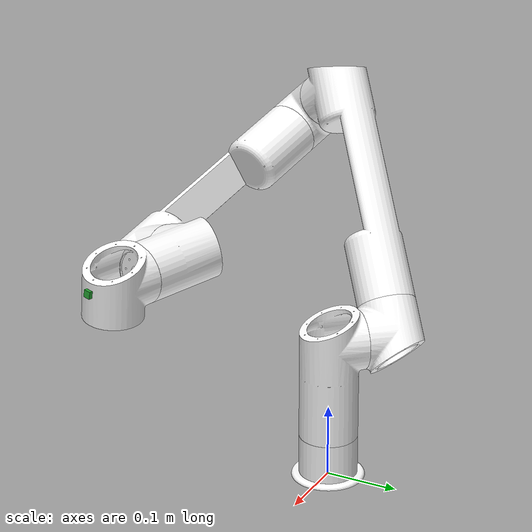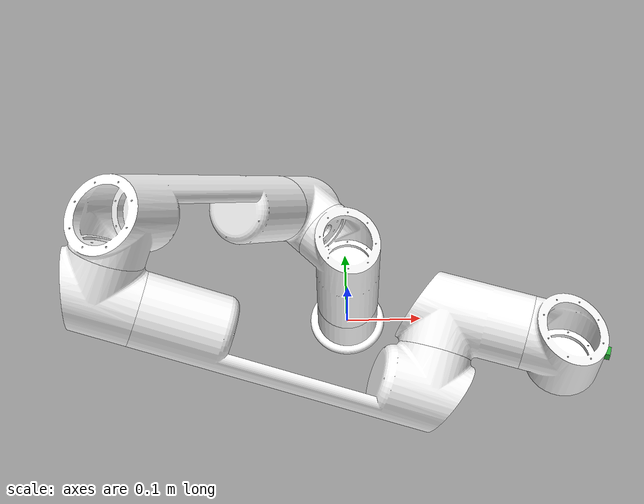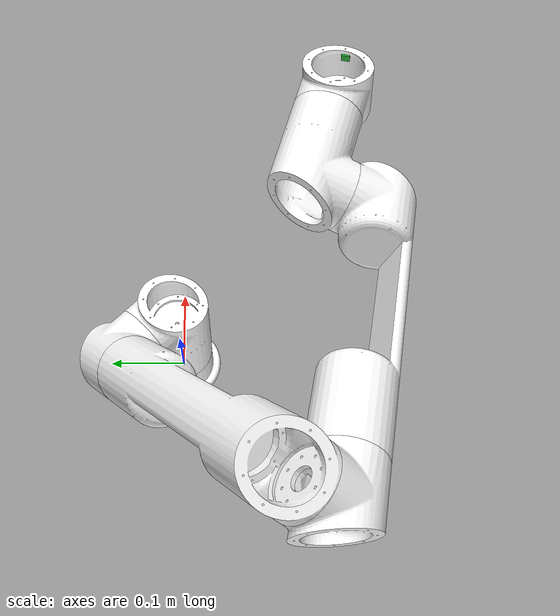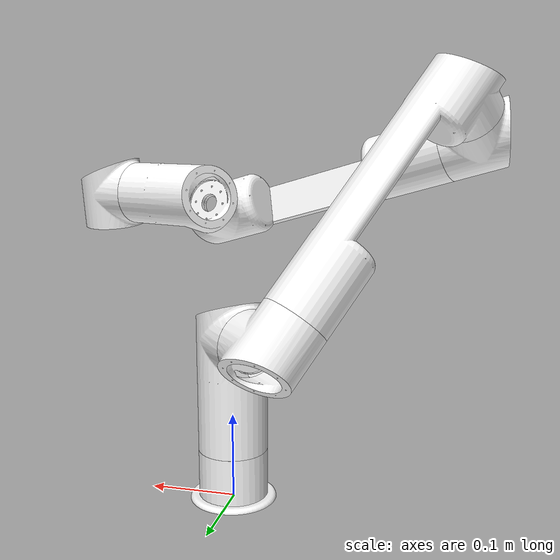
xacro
<?xml version="1.0"?>
<robot xmlns:xacro="http://ros.org/wiki/xacro" name="kv_robot">
    <link
            name="base_link">
        <inertial>
            <origin
                    xyz="-3.48411235527561E-20 0.0301785281442949 -1.27737983847514E-17"
                    rpy="0 0 0" />
            <mass
                    value="0.04711204348934" />
            <inertia
                    ixx="0"
                    ixy="0"
                    ixz="0"
                    iyy="0"
                    iyz="0"
                    izz="0" />
        </inertial>
        <visual>
            <origin
                    xyz="0 0 0"
                    rpy="0 0 0" />
            <geometry>
                <mesh
                        filename="package://kv_description/meshes/base_link.stl" />
            </geometry>
            <material
                    name="">
                <color
                        rgba="1 1 1 1" />
            </material>
        </visual>
        <collision>
            <origin
                    xyz="0 0 0"
                    rpy="0 0 0" />
            <geometry>
                <mesh
                        filename="package://kv_description/meshes/base_link.stl" />
            </geometry>
        </collision>
    </link>
    <link
            name="link1">
        <inertial>
            <origin
                    xyz="0.00268827345999307 0.0945967858897385 0.00430360818024049"
                    rpy="0 0 0" />
            <mass
                    value="0.193063663185278" />
            <inertia
                    ixx="0.000298000845841169"
                    ixy="-1.60317043521837E-05"
                    ixz="-1.39110171668462E-06"
                    iyy="3.0959491270747E-06"
                    iyz="-2.56648644641351E-05"
                    izz="0.000296642815998793" />
        </inertial>
        <visual>
            <origin
                    xyz="0 0 0"
                    rpy="0 0 0" />
            <geometry>
                <mesh
                        filename="package://kv_description/meshes/link1.stl" />
            </geometry>
            <material
                    name="">
                <color
                        rgba="1 1 1 1" />
            </material>
        </visual>
        <collision>
            <origin
                    xyz="0 0 0"
                    rpy="0 0 0" />
            <geometry>
                <mesh
                        filename="package://kv_description/meshes/link1.stl" />
            </geometry>
        </collision>
    </link>
    <transmission name="tran1">
        <type>transmission_interface/SimpleTransmission</type>
        <joint name="joint1">
            <hardwareInterface>hardware_interface/EffortJointInterface</hardwareInterface>
        </joint>
        <actuator name="motor1">
            <hardwareInterface>hardware_interface/EffortJointInterface</hardwareInterface>
            <mechanicalReduction>1</mechanicalReduction>
        </actuator>
    </transmission>
    <joint
            name="joint1"
            type="continuous">
        <origin
                xyz="0 0 0.06"
                rpy="1.5708 -1.2109E-16 3.1197" />
        <parent
                link="base_link" />
        <child
                link="link1" />
        <axis
                xyz="0 1 0" />
    </joint>
    <link
            name="link2">
        <inertial>
            <origin
                    xyz="-0.00210246735273234 -0.00510040197050435 -0.0809051700038997"
                    rpy="0 0 0" />
            <mass
                    value="0.104926581676356" />
            <inertia
                    ixx="0"
                    ixy="0"
                    ixz="0"
                    iyy="0"
                    iyz="0"
                    izz="0" />
        </inertial>
        <visual>
            <origin
                    xyz="0 0 0"
                    rpy="0 0 0" />
            <geometry>
                <mesh
                        filename="package://kv_description/meshes/link2.stl" />
            </geometry>
            <material
                    name="">
                <color
                        rgba="1 1 1 1" />
            </material>
        </visual>
        <collision>
            <origin
                    xyz="0 0 0"
                    rpy="0 0 0" />
            <geometry>
                <mesh
                        filename="package://kv_description/meshes/link2.stl" />
            </geometry>
        </collision>
    </link>
    <transmission name="tran2">
        <type>transmission_interface/SimpleTransmission</type>
        <joint name="joint2">
            <hardwareInterface>hardware_interface/EffortJointInterface</hardwareInterface>
        </joint>
        <actuator name="motor2">
            <hardwareInterface>hardware_interface/EffortJointInterface</hardwareInterface>
            <mechanicalReduction>1</mechanicalReduction>
        </actuator>
    </transmission>
    <joint
            name="joint2"
            type="continuous">
        <origin
                xyz="0 0.135 0"
                rpy="2.5615 0.56348 -0.8869" />
        <parent
                link="link1" />
        <child
                link="link2" />
        <axis
                xyz="0 0 1" />
    </joint>
    <link
            name="link3">
        <inertial>
            <origin
                    xyz="0.000280029217700144 0.164778711604506 0.00400958216544994"
                    rpy="0 0 0" />
            <mass
                    value="0.787800303264324" />
            <inertia
                    ixx="0.00722772946814379"
                    ixy="-4.19420038114878E-05"
                    ixz="2.89088030775027E-06"
                    iyy="6.98144647424678E-05"
                    iyz="-6.62618668950201E-05"
                    izz="0.00715871907746602" />
        </inertial>
        <visual>
            <origin
                    xyz="0 0 0"
                    rpy="0 0 0" />
            <geometry>
                <mesh
                        filename="package://kv_description/meshes/link3.stl" />
            </geometry>
            <material
                    name="">
                <color
                        rgba="1 1 1 1" />
            </material>
        </visual>
        <collision>
            <origin
                    xyz="0 0 0"
                    rpy="0 0 0" />
            <geometry>
                <mesh
                        filename="package://kv_description/meshes/link3.stl" />
            </geometry>
        </collision>
    </link>
    <transmission name="tran3">
        <type>transmission_interface/SimpleTransmission</type>
        <joint name="joint3">
            <hardwareInterface>hardware_interface/EffortJointInterface</hardwareInterface>
        </joint>
        <actuator name="motor3">
            <hardwareInterface>hardware_interface/EffortJointInterface</hardwareInterface>
            <mechanicalReduction>1</mechanicalReduction>
        </actuator>
    </transmission>
    <joint
            name="joint3"
            type="continuous">
        <origin
                xyz="0 0 -0.09"
                rpy="3.1416 1.3043 1.8969E-15" />
        <parent
                link="link2" />
        <child
                link="link3" />
        <axis
                xyz="0 1 0" />
    </joint>
    <link
            name="link4">
        <inertial>
            <origin
                    xyz="-0.00210198291625163 -0.00510034361445849 -0.0809043556658708"
                    rpy="0 0 0" />
            <mass
                    value="0.104930081178366" />
            <inertia
                    ixx="0"
                    ixy="0"
                    ixz="0"
                    iyy="0"
                    iyz="0"
                    izz="0" />
        </inertial>
        <visual>
            <origin
                    xyz="0 0 0"
                    rpy="0 0 0" />
            <geometry>
                <mesh
                        filename="package://kv_description/meshes/link4.stl" />
            </geometry>
            <material
                    name="">
                <color
                        rgba="1 1 1 1" />
            </material>
        </visual>
        <collision>
            <origin
                    xyz="0 0 0"
                    rpy="0 0 0" />
            <geometry>
                <mesh
                        filename="package://kv_description/meshes/link4.stl" />
            </geometry>
        </collision>
    </link>
    <transmission name="tran4">
        <type>transmission_interface/SimpleTransmission</type>
        <joint name="joint4">
            <hardwareInterface>hardware_interface/EffortJointInterface</hardwareInterface>
        </joint>
        <actuator name="motor4">
            <hardwareInterface>hardware_interface/EffortJointInterface</hardwareInterface>
            <mechanicalReduction>1</mechanicalReduction>
        </actuator>
    </transmission>
    <joint
            name="joint4"
            type="continuous">
        <origin
                xyz="0 0.36 0"
                rpy="3.7192E-15 -1.1102E-15 -0.95994" />
        <parent
                link="link3" />
        <child
                link="link4" />
        <axis
                xyz="0 0 1" />
    </joint>
    <link
            name="link5">
        <inertial>
            <origin
                    xyz="0.000280010295339694 0.10429768048651 0.00400942872407001"
                    rpy="0 0 0" />
            <mass
                    value="0.787801196097673" />
            <inertia
                    ixx="0.00722779594241823"
                    ixy="-4.19393237803521E-05"
                    ixz="2.89088498641138E-06"
                    iyy="6.98174241497681E-05"
                    iyz="-6.62378095785077E-05"
                    izz="0.00715878247805226" />
        </inertial>
        <visual>
            <origin
                    xyz="0 0 0"
                    rpy="0 0 0" />
            <geometry>
                <mesh
                        filename="package://kv_description/meshes/link5.stl" />
            </geometry>
            <material
                    name="">
                <color
                        rgba="1 1 1 1" />
            </material>
        </visual>
        <collision>
            <origin
                    xyz="0 0 0"
                    rpy="0 0 0" />
            <geometry>
                <mesh
                        filename="package://kv_description/meshes/link5.stl" />
            </geometry>
        </collision>
    </link>
    <transmission name="tran5">
        <type>transmission_interface/SimpleTransmission</type>
        <joint name="joint5">
            <hardwareInterface>hardware_interface/EffortJointInterface</hardwareInterface>
        </joint>
        <actuator name="motor5">
            <hardwareInterface>hardware_interface/EffortJointInterface</hardwareInterface>
            <mechanicalReduction>1</mechanicalReduction>
        </actuator>
    </transmission>
    <joint
            name="joint5"
            type="continuous">
        <origin
                xyz="0 -0.060481 -0.09"
                rpy="3.1416 0.37986 -1.4943E-17" />
        <parent
                link="link4" />
        <child
                link="link5" />
        <axis
                xyz="0 1 0" />
    </joint>
    <link
            name="link6">
        <inertial>
            <origin
                    xyz="0.020583837284486 -0.0244927019748049 -0.00137450937153039"
                    rpy="0 0 0" />
            <mass
                    value="0.160406414383487" />
            <inertia
                    ixx="0.000103445694540816"
                    ixy="1.42967202859882E-05"
                    ixz="-4.5692189273846E-07"
                    iyy="2.08345289893432E-06"
                    iyz="3.30274154233011E-06"
                    izz="0.000105318036795272" />
        </inertial>
        <visual>
            <origin
                    xyz="0 0 0"
                    rpy="0 0 0" />
            <geometry>
                <mesh
                        filename="package://kv_description/meshes/link6.stl" />
            </geometry>
            <material
                    name="">
                <color
                        rgba="1 1 1 1" />
            </material>
        </visual>
        <collision>
            <origin
                    xyz="0 0 0"
                    rpy="0 0 0" />
            <geometry>
                <mesh
                        filename="package://kv_description/meshes/link6.stl" />
            </geometry>
        </collision>
    </link>
    <transmission name="tran6">
        <type>transmission_interface/SimpleTransmission</type>
        <joint name="joint6">
            <hardwareInterface>hardware_interface/EffortJointInterface</hardwareInterface>
        </joint>
        <actuator name="motor6">
            <hardwareInterface>hardware_interface/EffortJointInterface</hardwareInterface>
            <mechanicalReduction>1</mechanicalReduction>
        </actuator>
    </transmission>
    <joint
            name="joint6"
            type="continuous">
        <origin
                xyz="0 0.29952 -0.063466"
                rpy="2.8394 1.5708 0" />
        <parent
                link="link5" />
        <child
                link="link6" />
        <axis
                xyz="-1 0 0" />
    </joint>
    <link
            name="link7">
        <inertial>
            <origin
                    xyz="-0.00185349311031408 -0.0095125912915775 -0.0620479983864288"
                    rpy="0 0 0" />
            <mass
                    value="0.118970373701656" />
            <inertia
                    ixx="0"
                    ixy="0"
                    ixz="0"
                    iyy="0"
                    iyz="0"
                    izz="0" />
        </inertial>
        <visual>
            <origin
                    xyz="0 0 0"
                    rpy="0 0 0" />
            <geometry>
                <mesh
                        filename="package://kv_description/meshes/link7.stl" />
            </geometry>
            <material
                    name="">
                <color
                        rgba="1 1 1 1" />
            </material>
        </visual>
        <collision>
            <origin
                    xyz="0 0 0"
                    rpy="0 0 0" />
            <geometry>
                <mesh
                        filename="package://kv_description/meshes/link7.stl" />
            </geometry>
        </collision>
    </link>
    <transmission name="tran7">
        <type>transmission_interface/SimpleTransmission</type>
        <joint name="joint7">
            <hardwareInterface>hardware_interface/EffortJointInterface</hardwareInterface>
        </joint>
        <actuator name="motor7">
            <hardwareInterface>hardware_interface/EffortJointInterface</hardwareInterface>
            <mechanicalReduction>1</mechanicalReduction>
        </actuator>
    </transmission>
    <joint
            name="joint7"
            type="continuous">
        <origin
                xyz="0.026534 -0.06493 0"
                rpy="1.5708 -0.40897 -3.1416" />
        <parent
                link="link6" />
        <child
                link="link7" />
        <axis
                xyz="0 0 -1" />
    </joint>

    <link name="camera_link">
        <collision>
            <origin xyz="0 0 0" rpy="0 1.5 0"/>
            <geometry>
                <box size="0.01 0.01 0.01"/>
            </geometry>
        </collision>

        <visual>
            <origin xyz="0 0 0" rpy="0 1.5 0"/>
            <geometry>
                <box size="0.01 0.01 0.01"/>
            </geometry>
            <material name="green"/>
        </visual>

        <inertial>
            <mass value="0.5" />
            <origin xyz="0 0 0" rpy="0 1.5 0"/>
            <box_inertia m="0.5" x="0.01" y="0.01" z="0.01" />
            <inertia ixx="1e-6" ixy="0" ixz="0" iyy="1e-6" iyz="0" izz="1e-6" />
        </inertial>
    </link>

    <joint name="camera_joint" type="fixed">
        <origin xyz="0 0 -0.11" rpy="-1.6 1.6 0"/>
        <parent link="link7"/>
        <child link="camera_link"/>
    </joint>
    <gazebo reference="link1">
        <turnGravityOff>true</turnGravityOff>
        <kinematic>true</kinematic>
    </gazebo>
    <gazebo reference="link2">
        <turnGravityOff>true</turnGravityOff>
        <kinematic>true</kinematic>
    </gazebo>
    <gazebo reference="link3">
        <turnGravityOff>true</turnGravityOff>
        <kinematic>true</kinematic>
    </gazebo>
    <gazebo reference="link4">
        <turnGravityOff>true</turnGravityOff>
        <kinematic>true</kinematic>
    </gazebo>
    <gazebo reference="link5">
        <turnGravityOff>true</turnGravityOff>
        <kinematic>true</kinematic>
    </gazebo>
    <gazebo reference="link6">
        <turnGravityOff>true</turnGravityOff>
        <kinematic>true</kinematic>
    </gazebo>
    <gazebo reference="link7">
        <turnGravityOff>true</turnGravityOff>
        <kinematic>true</kinematic>
    </gazebo>
    <!-- camera -->
    <gazebo reference="camera_link">
        <sensor type="camera" name="camera1">
            <update_rate>30.0</update_rate>
            <camera name="head">
                <horizontal_fov>1.3962634</horizontal_fov>
                <image>
                    <width>1280</width>
                    <height>720</height>
                    <format>R8G8B8</format>
                </image>
                <clip>
                    <near>0.02</near>
                    <far>300</far>
                </clip>
                <noise>
                    <type>gaussian</type>
                    <mean>0.0</mean>
                    <stddev>0.007</stddev>
                </noise>
            </camera>
            <plugin name="camera_controller" filename="libgazebo_ros_camera.so">
                <alwaysOn>true</alwaysOn>
                <updateRate>0.0</updateRate>
                <cameraName>kv/camera1</cameraName>
                <imageTopicName>image_raw</imageTopicName>
                <cameraInfoTopicName>camera_info</cameraInfoTopicName>
                <frameName>camera_link</frameName>
                <hackBaseline>0.07</hackBaseline>
                <distortionK1>0.0</distortionK1>
                <distortionK2>0.0</distortionK2>
                <distortionK3>0.0</distortionK3>
                <distortionT1>0.0</distortionT1>
                <distortionT2>0.0</distortionT2>
            </plugin>
        </sensor>
    </gazebo>
    <gazebo>
        <plugin filename="libgazebo_ros_control.so" name="gazebo_ros_control">
            <robotNamespace>/kv</robotNamespace>
        </plugin>
    </gazebo>
</robot>
